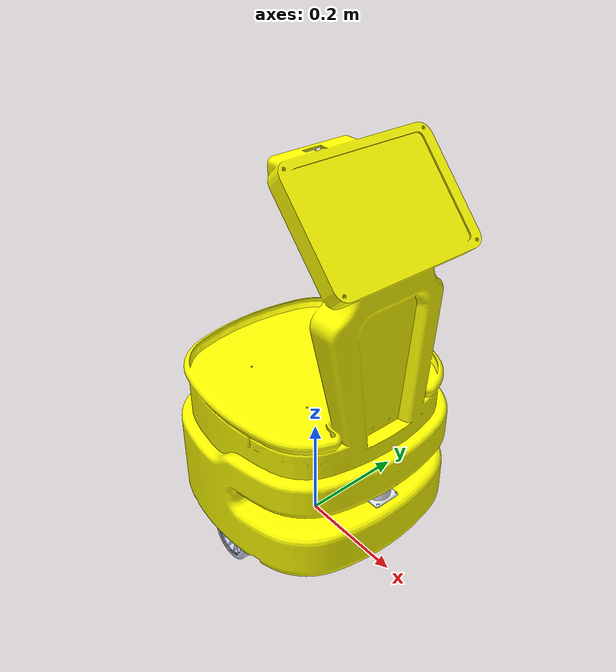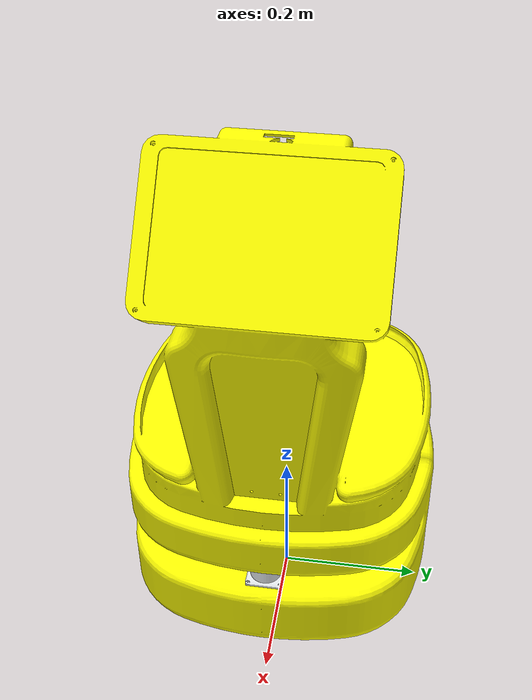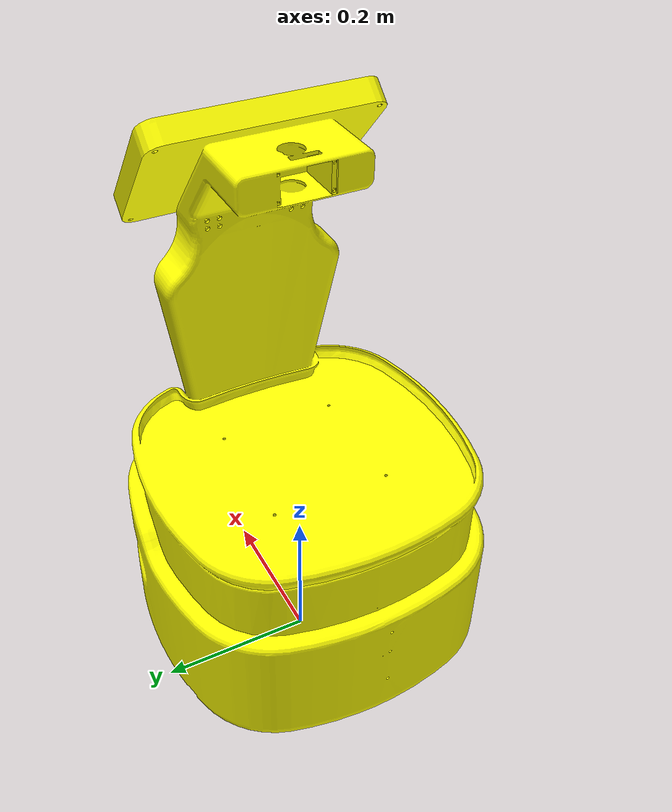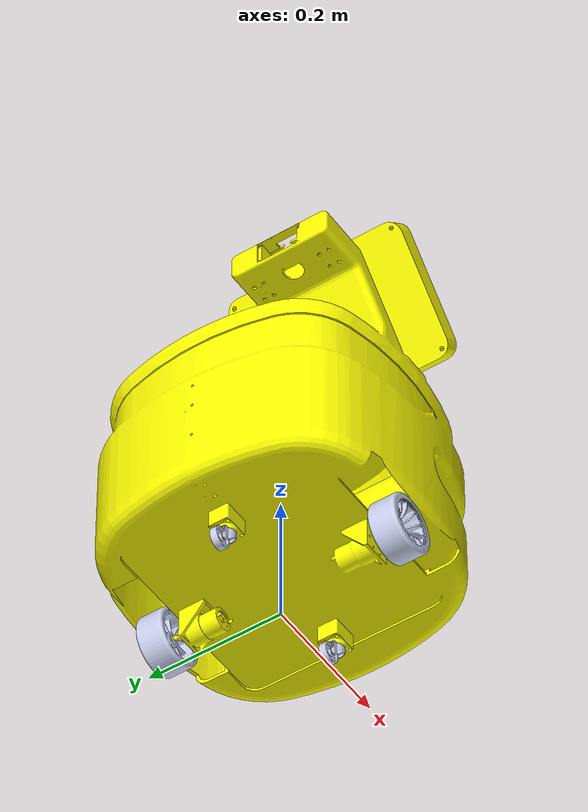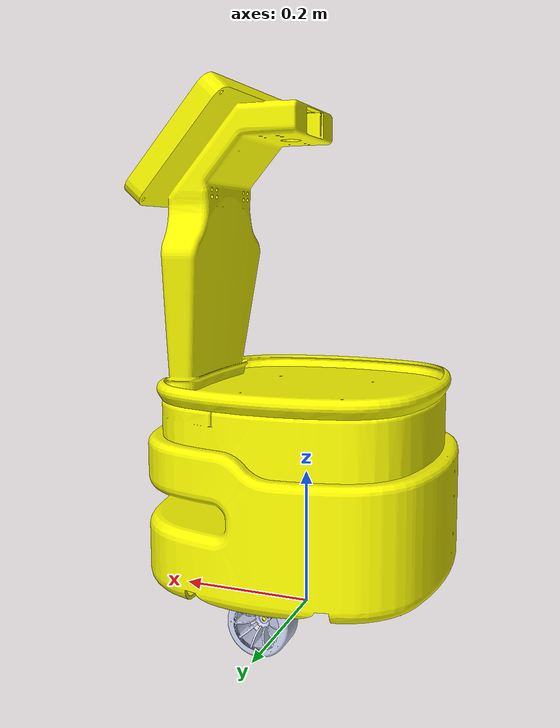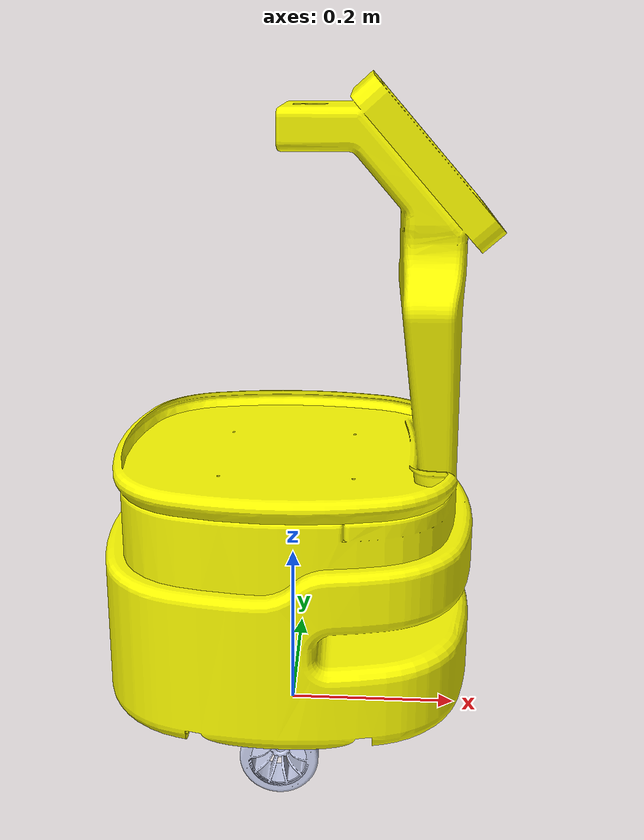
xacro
<?xml version="1.0" ?>
<robot
  name="my_robot">
  <link
    name="base_link">
    <inertial>
      <origin
        xyz="0.0517043612774992 -0.00328947712305949 0.333173970655177"
        rpy="0 0 0" />
      <mass
        value="7.48190026477119" />
      <inertia
        ixx="0.0777791142962461"
        ixy="-0.00113276327469233"
        ixz="0.00345925612372056"
        iyy="0.117259910756725"
        iyz="0.000486159287202676"
        izz="0.121904618447855" />
    </inertial>
    <visual>
      <origin
        xyz="0 0 0"
        rpy="0 0 0" />
      <geometry>
        <mesh
          filename="package://robot_description/meshes/base_link.STL" />
      </geometry>
      <material
        name="">
        <color
          rgba="1 1 0 1" />
      </material>
    </visual>
    <collision>
      <origin
        xyz="0 0 0"
        rpy="0 0 0" />
      <geometry>
        <mesh
          filename="package://robot_description/meshes/base_link.STL" />
      </geometry>
    </collision>
  </link>
  <link
    name="Link_left_wheel">
    <inertial>
      <origin
        xyz="-2.22044604925031E-16 0.00515561001736525 -1.59594559789866E-16"
        rpy="0 0 0" />
      <mass
        value="0.350420864366067" />
      <inertia
        ixx="0.000198240535291144"
        ixy="1.43703382286543E-18"
        ixz="3.73493778871175E-17"
        iyy="0.000327218895221129"
        iyz="-1.1265331736049E-18"
        izz="0.000198240535290853" />
    </inertial>
    <visual>
      <origin
        xyz="0 0 0"
        rpy="0 0 0" />
      <geometry>
        <mesh
          filename="package://robot_description/meshes/Link_left_wheel.STL" />
      </geometry>
      <material
        name="">
        <color
          rgba="0.792156862745098 0.819607843137255 0.933333333333333 1" />
      </material>
    </visual>
    <collision>
      <origin
        xyz="0 0 0"
        rpy="0 0 0" />
      <geometry>
        <mesh
          filename="package://robot_description/meshes/Link_left_wheel.STL" />
      </geometry>
    </collision>
  </link>
  <joint
    name="joint_left_wheel"
    type="fixed">
    <origin
      xyz="-0.00295929042163934 0.168017280398991 0.0458472697843976"
      rpy="0 0 0" />
    <parent
      link="base_link" />
    <child
      link="Link_left_wheel" />
    <axis
      xyz="0 1 0" />
    <dynamics
      damping="0.1"
      friction="0.1" />
  </joint>
  <link
    name="Link_right_wheel">
    <inertial>
      <origin
        xyz="-2.22044604925031E-16 -0.00369864476250206 -6.93889390390723E-17"
        rpy="0 0 0" />
      <mass
        value="0.350420864366068" />
      <inertia
        ixx="0.000198240535290856"
        ixy="8.12886360172838E-18"
        ixz="-3.72000857552291E-17"
        iyy="0.00032721889522113"
        iyz="-9.94714150986548E-19"
        izz="0.000198240535291143" />
    </inertial>
    <visual>
      <origin
        xyz="0 0 0"
        rpy="0 0 0" />
      <geometry>
        <mesh
          filename="package://robot_description/meshes/Link_right_wheel.STL" />
      </geometry>
      <material
        name="">
        <color
          rgba="0.792156862745098 0.819607843137255 0.933333333333333 1" />
      </material>
    </visual>
    <collision>
      <origin
        xyz="0 0 0"
        rpy="0 0 0" />
      <geometry>
        <mesh
          filename="package://robot_description/meshes/Link_right_wheel.STL" />
      </geometry>
    </collision>
  </link>
  <joint
    name="Link_right_wheel"
    type="fixed">
    <origin
      xyz="-0.00295929042164056 -0.176055069471252 0.0458472697843999"
      rpy="0 0 0" />
    <parent
      link="base_link" />
    <child
      link="Link_right_wheel" />
    <axis
      xyz="0 -1 0" />
    <dynamics
      damping="0.1"
      friction="0.1" />
  </joint>
  <link
    name="Link_phu1_wheel">
    <inertial>
      <origin
        xyz="-0.00672356777799799 1.17001422994534E-08 -0.0135637517556458"
        rpy="0 0 0" />
      <mass
        value="0.0028677222097769" />
      <inertia
        ixx="3.73032517711628E-07"
        ixy="-1.14575015351507E-13"
        ixz="-1.49676790119059E-07"
        iyy="4.27657290163847E-07"
        iyz="-3.08283366434075E-14"
        izz="3.91119381893066E-07" />
    </inertial>
    <visual>
      <origin
        xyz="0 0 0"
        rpy="0 0 0" />
      <geometry>
        <mesh
          filename="package://robot_description/meshes/Link_phu1_wheel.STL" />
      </geometry>
      <material
        name="">
        <color
          rgba="0.792156862745098 0.819607843137255 0.933333333333333 1" />
      </material>
    </visual>
    <collision>
      <origin
        xyz="0 0 0"
        rpy="0 0 0" />
      <geometry>
        <mesh
          filename="package://robot_description/meshes/Link_phu1_wheel.STL" />
      </geometry>
    </collision>
  </link>
  <joint
    name="Joint_phu1_wheel"
    type="fixed">
    <origin
      xyz="0.11749070957836 -0.0032904119086993 0.039122269784398"
      rpy="0 0 0" />
    <parent
      link="base_link" />
    <child
      link="Link_phu1_wheel" />
    <axis
      xyz="0 0 1" />
    <dynamics
      damping="0.1"
      friction="0.1" />
  </joint>
  <link
    name="Link_banh_phu1">
    <inertial>
      <origin
        xyz="2.62255713001647E-06 -8.32667268468867E-17 4.48935712494408E-06"
        rpy="0 0 0" />
      <mass
        value="0.00473899115695245" />
      <inertia
        ixx="3.41036358265618E-07"
        ixy="1.0041919680455E-21"
        ixz="-1.44226505205077E-10"
        iyy="6.18875527744158E-07"
        iyz="-2.25864251907507E-21"
        izz="3.40873720922609E-07" />
    </inertial>
    <visual>
      <origin
        xyz="0 0 0"
        rpy="0 0 0" />
      <geometry>
        <mesh
          filename="package://robot_description/meshes/Link_banh_phu1.STL" />
      </geometry>
      <material
        name="">
        <color
          rgba="0.792156862745098 0.819607843137255 0.933333333333333 1" />
      </material>
    </visual>
    <collision>
      <origin
        xyz="0 0 0"
        rpy="0 0 0" />
      <geometry>
        <mesh
          filename="package://robot_description/meshes/Link_banh_phu1.STL" />
      </geometry>
    </collision>
  </link>
  <joint
    name="Joint_banh_phu1"
    type="fixed">
    <origin
      xyz="-0.0159999999999999 0 -0.0253750000000002"
      rpy="0 0 0" />
    <parent
      link="Link_phu1_wheel" />
    <child
      link="Link_banh_phu1" />
    <axis
      xyz="0 1 0" />
  </joint>
  <link
    name="Link_phu2_wheel">
    <inertial>
      <origin
        xyz="-0.00672084331186174 -0.000191383309448762 -0.0135637516318"
        rpy="0 0 0" />
      <mass
        value="0.00286772220485322" />
      <inertia
        ixx="3.73076783838175E-07"
        ixy="-1.55446313002415E-09"
        ixz="-1.49616134969304E-07"
        iyy="4.27613027149167E-07"
        iyz="-4.26078038494859E-09"
        izz="3.9111938711631E-07" />
    </inertial>
    <visual>
      <origin
        xyz="0 0 0"
        rpy="0 0 0" />
      <geometry>
        <mesh
          filename="package://robot_description/meshes/Link_phu2_wheel.STL" />
      </geometry>
      <material
        name="">
        <color
          rgba="0.792156862745098 0.819607843137255 0.933333333333333 1" />
      </material>
    </visual>
    <collision>
      <origin
        xyz="0 0 0"
        rpy="0 0 0" />
      <geometry>
        <mesh
          filename="package://robot_description/meshes/Link_phu2_wheel.STL" />
      </geometry>
    </collision>
  </link>
  <joint
    name="Joint_phu2_wheel"
    type="fixed">
    <origin
      xyz="-0.123509290421638 -0.00329041190869875 0.0391222697843984"
      rpy="0 0 0" />
    <parent
      link="base_link" />
    <child
      link="Link_phu2_wheel" />
    <axis
      xyz="0 0 1" />
    <dynamics
      damping="0.1"
      friction="0.1" />
  </joint>
  <link
    name="Link_banh_phu2">
    <inertial>
      <origin
        xyz="-2.09642822879275E-07 -5.97017496550833E-09 5.19501179269827E-06"
        rpy="0 0 0" />
      <mass
        value="0.00473899115695243" />
      <inertia
        ixx="3.41345146213361E-07"
        ixy="-7.90346649827225E-09"
        ixz="1.33414337942761E-11"
        iyy="6.18650454069899E-07"
        iyz="3.79935248824119E-13"
        izz="3.40790006649121E-07" />
    </inertial>
    <visual>
      <origin
        xyz="0 0 0"
        rpy="0 0 0" />
      <geometry>
        <mesh
          filename="package://robot_description/meshes/Link_banh_phu2.STL" />
      </geometry>
      <material
        name="">
        <color
          rgba="0.792156862745098 0.819607843137255 0.933333333333333 1" />
      </material>
    </visual>
    <collision>
      <origin
        xyz="0 0 0"
        rpy="0 0 0" />
      <geometry>
        <mesh
          filename="package://robot_description/meshes/Link_banh_phu2.STL" />
      </geometry>
    </collision>
  </link>
  <joint
    name="Joinht_banh_phu2"
    type="fixed">
    <origin
      xyz="-0.015993516043425 -0.000455460831140703 -0.025375"
      rpy="0 0 0" />
    <parent
      link="Link_phu2_wheel" />
    <child
      link="Link_banh_phu2" />
    <axis
      xyz="-0.0284663019462878 0.99959475271407 0" />
  </joint>
  <link
    name="laser">
    <inertial>
      <origin
        xyz="-0.00279720933036787 4.07890839426717E-06 -0.0191609375533638"
        rpy="0 0 0" />
      <mass
        value="0.35732273694415" />
      <inertia
        ixx="8.87664971400413E-05"
        ixy="1.96195893473182E-08"
        ixz="1.09175662292318E-06"
        iyy="8.60451964468662E-05"
        iyz="-3.24248522817882E-11"
        izz="0.000115392693784764" />
    </inertial>
    <visual>
      <origin
        xyz="0 0 0"
        rpy="0 0 0" />
      <geometry>
        <mesh
          filename="package://robot_description/meshes/Link_lidar.STL" />
      </geometry>
      <material
        name="">
        <color
          rgba="0.898039215686275 0.917647058823529 0.929411764705882 1" />
      </material>
    </visual>
    <collision>
      <origin
        xyz="0 0 0"
        rpy="0 0 0" />
      <geometry>
        <mesh
          filename="package://robot_description/meshes/Link_lidar.STL" />
      </geometry>
    </collision>
  </link>
  <joint
    name="laser_joint"
    type="fixed">
    <origin
      xyz="0.170964844548625 -0.00338898911623006 0.180020078357876"
      rpy="0 0 0" />
    <parent
      link="base_link" />
    <child
      link="laser" />
    <axis
      xyz="0 0 0" />
  </joint>
</robot>
